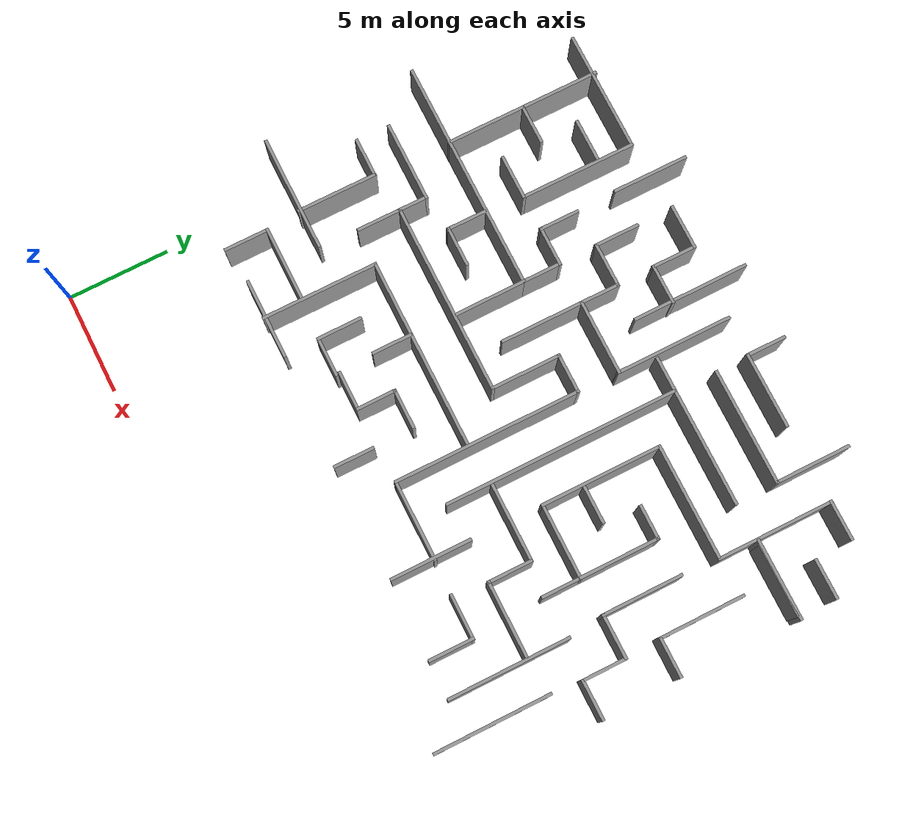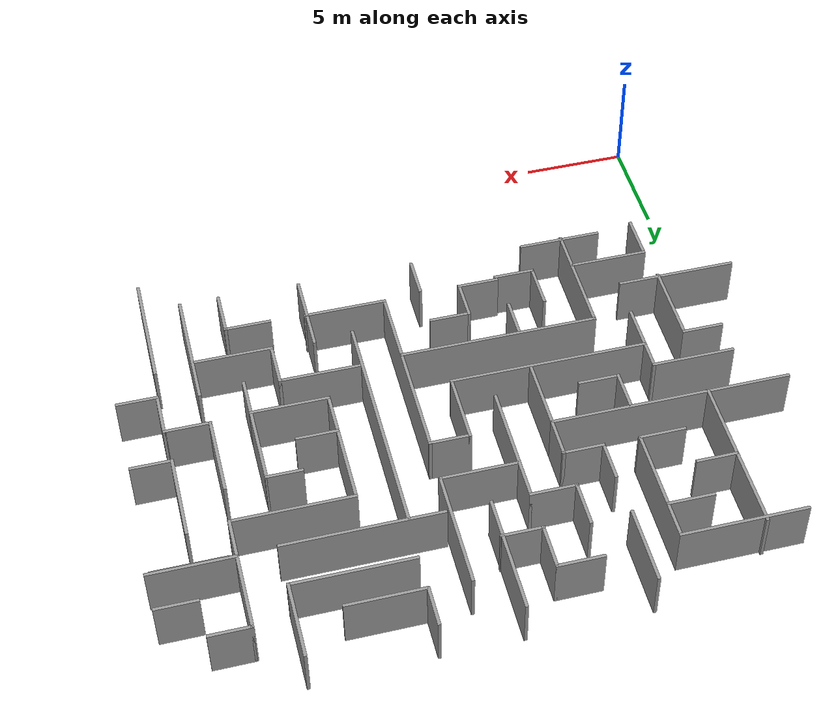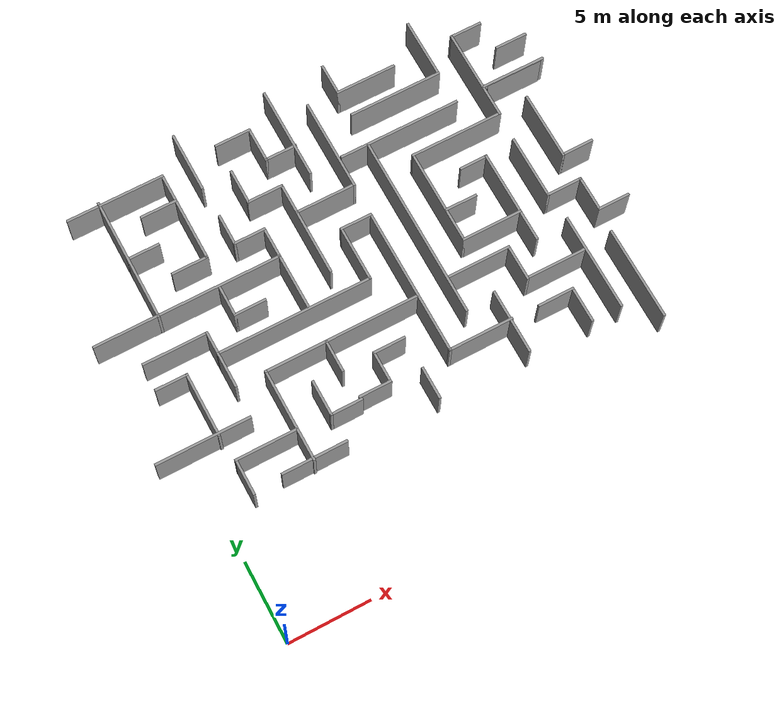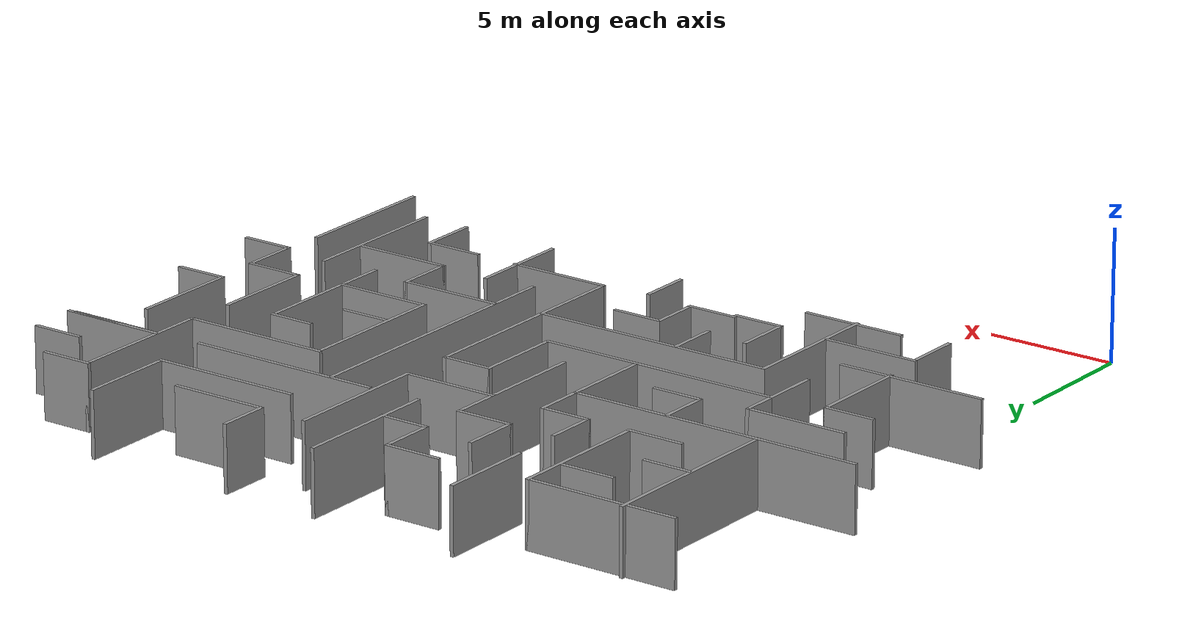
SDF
<sdf version="1.7">
 <model name="maze4">
  <pose>-0.019787 0.082438 0 0 -0 0</pose>
  <link name="Wall_450">
   <collision name="Wall_450_Collision">
    <geometry><box><size>6 0.15 2.5</size></box></geometry>
    <pose>0 0 1.25 0 -0 0</pose>
   </collision>
   <visual name="Wall_450_Visual">
    <pose>0 0 1.25 0 -0 0</pose>
    <geometry><box><size>6 0.15 2.5</size></box></geometry>
    <material>
     <script><uri>file://media/materials/scripts/gazebo.material</uri><name>Gazebo/Grey</name></script>
     <ambient>1 1 1 1</ambient>
    </material>
    <meta><layer>0</layer></meta>
   </visual>
   <pose>24.5619 10.3295 0 0 -0 1.5708</pose>
  </link>
  <link name="Wall_452">
   <collision name="Wall_452_Collision">
    <geometry><box><size>2.25 0.15 2.5</size></box></geometry>
    <pose>0 0 1.25 0 -0 0</pose>
   </collision>
   <visual name="Wall_452_Visual">
    <pose>0 0 1.25 0 -0 0</pose>
    <geometry><box><size>2.25 0.15 2.5</size></box></geometry>
    <material>
     <script><uri>file://media/materials/scripts/gazebo.material</uri><name>Gazebo/Grey</name></script>
     <ambient>1 1 1 1</ambient>
    </material>
    <meta><layer>0</layer></meta>
   </visual>
   <pose>22.7119 8.45448 0 0 -0 1.5708</pose>
  </link>
  <link name="Wall_453">
   <collision name="Wall_453_Collision">
    <geometry><box><size>2.25 0.15 2.5</size></box></geometry>
    <pose>0 0 1.25 0 -0 0</pose>
   </collision>
   <visual name="Wall_453_Visual">
    <pose>0 0 1.25 0 -0 0</pose>
    <geometry><box><size>2.25 0.15 2.5</size></box></geometry>
    <material>
     <script><uri>file://media/materials/scripts/gazebo.material</uri><name>Gazebo/Grey</name></script>
     <ambient>1 1 1 1</ambient>
    </material>
    <meta><layer>0</layer></meta>
   </visual>
   <pose>21.6619 9.50448 0 0 -0 3.14159</pose>
  </link>
  <link name="Wall_479">
   <collision name="Wall_479_Collision">
    <geometry><box><size>3.75 0.15 2.5</size></box></geometry>
    <pose>0 0 1.25 0 -0 0</pose>
   </collision>
   <visual name="Wall_479_Visual">
    <pose>0 0 1.25 0 -0 0</pose>
    <geometry><box><size>3.75 0.15 2.5</size></box></geometry>
    <material>
     <script><uri>file://media/materials/scripts/gazebo.material</uri><name>Gazebo/Grey</name></script>
     <ambient>1 1 1 1</ambient>
    </material>
    <meta><layer>0</layer></meta>
   </visual>
   <pose>22.6438 26.4366 0 0 -0 -1.5708</pose>
  </link>
  <link name="Wall_480">
   <collision name="Wall_480_Collision">
    <geometry><box><size>5.75 0.15 2.5</size></box></geometry>
    <pose>0 0 1.25 0 -0 0</pose>
   </collision>
   <visual name="Wall_480_Visual">
    <pose>0 0 1.25 0 -0 0</pose>
    <geometry><box><size>5.75 0.15 2.5</size></box></geometry>
    <material>
     <script><uri>file://media/materials/scripts/gazebo.material</uri><name>Gazebo/Grey</name></script>
     <ambient>1 1 1 1</ambient>
    </material>
    <meta><layer>0</layer></meta>
   </visual>
   <pose>19.8438 24.6366 0 0 -0 3.14159</pose>
  </link>
  <link name="Wall_482">
   <collision name="Wall_482_Collision">
    <geometry><box><size>2 0.15 2.5</size></box></geometry>
    <pose>0 0 1.25 0 -0 0</pose>
   </collision>
   <visual name="Wall_482_Visual">
    <pose>0 0 1.25 0 -0 0</pose>
    <geometry><box><size>2 0.15 2.5</size></box></geometry>
    <material>
     <script><uri>file://media/materials/scripts/gazebo.material</uri><name>Gazebo/Grey</name></script>
     <ambient>1 1 1 1</ambient>
    </material>
    <meta><layer>0</layer></meta>
   </visual>
   <pose>16.9885 27.1895 0 0 -0 -1.5708</pose>
  </link>
  <link name="Wall_483">
   <collision name="Wall_483_Collision">
    <geometry><box><size>3.75 0.15 2.5</size></box></geometry>
    <pose>0 0 1.25 0 -0 0</pose>
   </collision>
   <visual name="Wall_483_Visual">
    <pose>0 0 1.25 0 -0 0</pose>
    <geometry><box><size>3.75 0.15 2.5</size></box></geometry>
    <material>
     <script><uri>file://media/materials/scripts/gazebo.material</uri><name>Gazebo/Grey</name></script>
     <ambient>1 1 1 1</ambient>
    </material>
    <meta><layer>0</layer></meta>
   </visual>
   <pose>18.7885 26.2645 0 0 -0 0</pose>
  </link>
  <link name="Wall_485">
   <collision name="Wall_485_Collision">
    <geometry><box><size>5.75 0.15 2.5</size></box></geometry>
    <pose>0 0 1.25 0 -0 0</pose>
   </collision>
   <visual name="Wall_485_Visual">
    <pose>0 0 1.25 0 -0 0</pose>
    <geometry><box><size>5.75 0.15 2.5</size></box></geometry>
    <material>
     <script><uri>file://media/materials/scripts/gazebo.material</uri><name>Gazebo/Grey</name></script>
     <ambient>1 1 1 1</ambient>
    </material>
    <meta><layer>0</layer></meta>
   </visual>
   <pose>13.2455 25.3552 0 0 -0 -1.5708</pose>
  </link>
  <link name="Wall_487">
   <collision name="Wall_487_Collision">
    <geometry><box><size>2.25 0.15 2.5</size></box></geometry>
    <pose>0 0 1.25 0 -0 0</pose>
   </collision>
   <visual name="Wall_487_Visual">
    <pose>0 0 1.25 0 -0 0</pose>
    <geometry><box><size>2.25 0.15 2.5</size></box></geometry>
    <material>
     <script><uri>file://media/materials/scripts/gazebo.material</uri><name>Gazebo/Grey</name></script>
     <ambient>1 1 1 1</ambient>
    </material>
    <meta><layer>0</layer></meta>
   </visual>
   <pose>10.3897 26.5278 0 0 -0 0</pose>
  </link>
  <link name="Wall_488">
   <collision name="Wall_488_Collision">
    <geometry><box><size>2.25 0.15 2.5</size></box></geometry>
    <pose>0 0 1.25 0 -0 0</pose>
   </collision>
   <visual name="Wall_488_Visual">
    <pose>0 0 1.25 0 -0 0</pose>
    <geometry><box><size>2.25 0.15 2.5</size></box></geometry>
    <material>
     <script><uri>file://media/materials/scripts/gazebo.material</uri><name>Gazebo/Grey</name></script>
     <ambient>1 1 1 1</ambient>
    </material>
    <meta><layer>0</layer></meta>
   </visual>
   <pose>11.4397 25.4778 0 0 -0 -1.5708</pose>
  </link>
  <link name="Wall_489">
   <collision name="Wall_489_Collision">
    <geometry><box><size>2 0.15 2.5</size></box></geometry>
    <pose>0 0 1.25 0 -0 0</pose>
   </collision>
   <visual name="Wall_489_Visual">
    <pose>0 0 1.25 0 -0 0</pose>
    <geometry><box><size>2 0.15 2.5</size></box></geometry>
    <material>
     <script><uri>file://media/materials/scripts/gazebo.material</uri><name>Gazebo/Grey</name></script>
     <ambient>1 1 1 1</ambient>
    </material>
    <meta><layer>0</layer></meta>
   </visual>
   <pose>12.3647 24.4278 0 0 -0 0</pose>
  </link>
  <link name="Wall_491">
   <collision name="Wall_491_Collision">
    <geometry><box><size>3.75 0.15 2.5</size></box></geometry>
    <pose>0 0 1.25 0 -0 0</pose>
   </collision>
   <visual name="Wall_491_Visual">
    <pose>0 0 1.25 0 -0 0</pose>
    <geometry><box><size>3.75 0.15 2.5</size></box></geometry>
    <material>
     <script><uri>file://media/materials/scripts/gazebo.material</uri><name>Gazebo/Grey</name></script>
     <ambient>1 1 1 1</ambient>
    </material>
    <meta><layer>0</layer></meta>
   </visual>
   <pose>7.46817 26.3749 0 0 -0 1.5708</pose>
  </link>
  <link name="Wall_502">
   <collision name="Wall_502_Collision">
    <geometry><box><size>6 0.15 2.5</size></box></geometry>
    <pose>0 0 1.25 0 -0 0</pose>
   </collision>
   <visual name="Wall_502_Visual">
    <pose>0 0 1.25 0 -0 0</pose>
    <geometry><box><size>6 0.15 2.5</size></box></geometry>
    <material>
     <script><uri>file://media/materials/scripts/gazebo.material</uri><name>Gazebo/Grey</name></script>
     <ambient>1 1 1 1</ambient>
    </material>
    <meta><layer>0</layer></meta>
   </visual>
   <pose>2.90081 26.2748 0 0 -0 0</pose>
  </link>
  <link name="Wall_503">
   <collision name="Wall_503_Collision">
    <geometry><box><size>5.75 0.15 2.5</size></box></geometry>
    <pose>0 0 1.25 0 -0 0</pose>
   </collision>
   <visual name="Wall_503_Visual">
    <pose>0 0 1.25 0 -0 0</pose>
    <geometry><box><size>5.75 0.15 2.5</size></box></geometry>
    <material>
     <script><uri>file://media/materials/scripts/gazebo.material</uri><name>Gazebo/Grey</name></script>
     <ambient>1 1 1 1</ambient>
    </material>
    <meta><layer>0</layer></meta>
   </visual>
   <pose>5.82581 23.4748 0 0 -0 -1.5708</pose>
  </link>
  <link name="Wall_504">
   <collision name="Wall_504_Collision">
    <geometry><box><size>2.25 0.15 2.5</size></box></geometry>
    <pose>0 0 1.25 0 -0 0</pose>
   </collision>
   <visual name="Wall_504_Visual">
    <pose>0 0 1.25 0 -0 0</pose>
    <geometry><box><size>2.25 0.15 2.5</size></box></geometry>
    <material>
     <script><uri>file://media/materials/scripts/gazebo.material</uri><name>Gazebo/Grey</name></script>
     <ambient>1 1 1 1</ambient>
    </material>
    <meta><layer>0</layer></meta>
   </visual>
   <pose>4.77581 20.6748 0 0 -0 3.14159</pose>
  </link>
  <link name="Wall_506">
   <collision name="Wall_506_Collision">
    <geometry><box><size>2.25 0.15 2.5</size></box></geometry>
    <pose>0 0 1.25 0 -0 0</pose>
   </collision>
   <visual name="Wall_506_Visual">
    <pose>0 0 1.25 0 -0 0</pose>
    <geometry><box><size>2.25 0.15 2.5</size></box></geometry>
    <material>
     <script><uri>file://media/materials/scripts/gazebo.material</uri><name>Gazebo/Grey</name></script>
     <ambient>1 1 1 1</ambient>
    </material>
    <meta><layer>0</layer></meta>
   </visual>
   <pose>4.75782 24.5472 0 0 -0 0</pose>
  </link>
  <link name="Wall_510">
   <collision name="Wall_510_Collision">
    <geometry><box><size>7.75 0.15 2.5</size></box></geometry>
    <pose>0 0 1.25 0 -0 0</pose>
   </collision>
   <visual name="Wall_510_Visual">
    <pose>0 0 1.25 0 -0 0</pose>
    <geometry><box><size>7.75 0.15 2.5</size></box></geometry>
    <material>
     <script><uri>file://media/materials/scripts/gazebo.material</uri><name>Gazebo/Grey</name></script>
     <ambient>1 1 1 1</ambient>
    </material>
    <meta><layer>0</layer></meta>
   </visual>
   <pose>1.93359 22.6132 0 0 -0 -1.5708</pose>
  </link>
  <link name="Wall_512">
   <collision name="Wall_512_Collision">
    <geometry><box><size>2 0.15 2.5</size></box></geometry>
    <pose>0 0 1.25 0 -0 0</pose>
   </collision>
   <visual name="Wall_512_Visual">
    <pose>0 0 1.25 0 -0 0</pose>
    <geometry><box><size>2 0.15 2.5</size></box></geometry>
    <material>
     <script><uri>file://media/materials/scripts/gazebo.material</uri><name>Gazebo/Grey</name></script>
     <ambient>1 1 1 1</ambient>
    </material>
    <meta><layer>0</layer></meta>
   </visual>
   <pose>2.85859 22.62 0 0 -0 0</pose>
  </link>
  <link name="Wall_529">
   <collision name="Wall_529_Collision">
    <geometry><box><size>11.5 0.15 2.5</size></box></geometry>
    <pose>0 0 1.25 0 -0 0</pose>
   </collision>
   <visual name="Wall_529_Visual">
    <pose>0 0 1.25 0 -0 0</pose>
    <geometry><box><size>11.5 0.15 2.5</size></box></geometry>
    <material>
     <script><uri>file://media/materials/scripts/gazebo.material</uri><name>Gazebo/Grey</name></script>
     <ambient>1 1 1 1</ambient>
    </material>
    <meta><layer>0</layer></meta>
   </visual>
   <pose>3.72363 18.8268 0 0 -0 0</pose>
  </link>
  <link name="Wall_530">
   <collision name="Wall_530_Collision">
    <geometry><box><size>2 0.15 2.5</size></box></geometry>
    <pose>0 0 1.25 0 -0 0</pose>
   </collision>
   <visual name="Wall_530_Visual">
    <pose>0 0 1.25 0 -0 0</pose>
    <geometry><box><size>2 0.15 2.5</size></box></geometry>
    <material>
     <script><uri>file://media/materials/scripts/gazebo.material</uri><name>Gazebo/Grey</name></script>
     <ambient>1 1 1 1</ambient>
    </material>
    <meta><layer>0</layer></meta>
   </visual>
   <pose>9.39863 19.7518 0 0 -0 1.5708</pose>
  </link>
  <link name="Wall_531">
   <collision name="Wall_531_Collision">
    <geometry><box><size>2 0.15 2.5</size></box></geometry>
    <pose>0 0 1.25 0 -0 0</pose>
   </collision>
   <visual name="Wall_531_Visual">
    <pose>0 0 1.25 0 -0 0</pose>
    <geometry><box><size>2 0.15 2.5</size></box></geometry>
    <material>
     <script><uri>file://media/materials/scripts/gazebo.material</uri><name>Gazebo/Grey</name></script>
     <ambient>1 1 1 1</ambient>
    </material>
    <meta><layer>0</layer></meta>
   </visual>
   <pose>8.47363 20.6768 0 0 -0 3.14159</pose>
  </link>
  <link name="Wall_532">
   <collision name="Wall_532_Collision">
    <geometry><box><size>2 0.15 2.5</size></box></geometry>
    <pose>0 0 1.25 0 -0 0</pose>
   </collision>
   <visual name="Wall_532_Visual">
    <pose>0 0 1.25 0 -0 0</pose>
    <geometry><box><size>2 0.15 2.5</size></box></geometry>
    <material>
     <script><uri>file://media/materials/scripts/gazebo.material</uri><name>Gazebo/Grey</name></script>
     <ambient>1 1 1 1</ambient>
    </material>
    <meta><layer>0</layer></meta>
   </visual>
   <pose>7.54863 21.6018 0 0 -0 1.5708</pose>
  </link>
  <link name="Wall_534">
   <collision name="Wall_534_Collision">
    <geometry><box><size>2.25 0.15 2.5</size></box></geometry>
    <pose>0 0 1.25 0 -0 0</pose>
   </collision>
   <visual name="Wall_534_Visual">
    <pose>0 0 1.25 0 -0 0</pose>
    <geometry><box><size>2.25 0.15 2.5</size></box></geometry>
    <material>
     <script><uri>file://media/materials/scripts/gazebo.material</uri><name>Gazebo/Grey</name></script>
     <ambient>1 1 1 1</ambient>
    </material>
    <meta><layer>0</layer></meta>
   </visual>
   <pose>9.36701 23.6195 0 0 -0 -1.5708</pose>
  </link>
  <link name="Wall_535">
   <collision name="Wall_535_Collision">
    <geometry><box><size>2.25 0.15 2.5</size></box></geometry>
    <pose>0 0 1.25 0 -0 0</pose>
   </collision>
   <visual name="Wall_535_Visual">
    <pose>0 0 1.25 0 -0 0</pose>
    <geometry><box><size>2.25 0.15 2.5</size></box></geometry>
    <material>
     <script><uri>file://media/materials/scripts/gazebo.material</uri><name>Gazebo/Grey</name></script>
     <ambient>1 1 1 1</ambient>
    </material>
    <meta><layer>0</layer></meta>
   </visual>
   <pose>10.417 22.5695 0 0 -0 0</pose>
  </link>
  <link name="Wall_536">
   <collision name="Wall_536_Collision">
    <geometry><box><size>6 0.15 2.5</size></box></geometry>
    <pose>0 0 1.25 0 -0 0</pose>
   </collision>
   <visual name="Wall_536_Visual">
    <pose>0 0 1.25 0 -0 0</pose>
    <geometry><box><size>6 0.15 2.5</size></box></geometry>
    <material>
     <script><uri>file://media/materials/scripts/gazebo.material</uri><name>Gazebo/Grey</name></script>
     <ambient>1 1 1 1</ambient>
    </material>
    <meta><layer>0</layer></meta>
   </visual>
   <pose>11.467 19.6445 0 0 -0 -1.5708</pose>
  </link>
  <link name="Wall_538">
   <collision name="Wall_538_Collision">
    <geometry><box><size>3.75 0.15 2.5</size></box></geometry>
    <pose>0 0 1.25 0 -0 0</pose>
   </collision>
   <visual name="Wall_538_Visual">
    <pose>0 0 1.25 0 -0 0</pose>
    <geometry><box><size>3.75 0.15 2.5</size></box></geometry>
    <material>
     <script><uri>file://media/materials/scripts/gazebo.material</uri><name>Gazebo/Grey</name></script>
     <ambient>1 1 1 1</ambient>
    </material>
    <meta><layer>0</layer></meta>
   </visual>
   <pose>13.2777 20.7234 0 0 -0 0</pose>
  </link>
  <link name="Wall_539">
   <collision name="Wall_539_Collision">
    <geometry><box><size>5.75 0.15 2.5</size></box></geometry>
    <pose>0 0 1.25 0 -0 0</pose>
   </collision>
   <visual name="Wall_539_Visual">
    <pose>0 0 1.25 0 -0 0</pose>
    <geometry><box><size>5.75 0.15 2.5</size></box></geometry>
    <material>
     <script><uri>file://media/materials/scripts/gazebo.material</uri><name>Gazebo/Grey</name></script>
     <ambient>1 1 1 1</ambient>
    </material>
    <meta><layer>0</layer></meta>
   </visual>
   <pose>15.0777 23.5234 0 0 -0 1.5708</pose>
  </link>
  <link name="Wall_541">
   <collision name="Wall_541_Collision">
    <geometry><box><size>7.5 0.15 2.5</size></box></geometry>
    <pose>0 0 1.25 0 -0 0</pose>
   </collision>
   <visual name="Wall_541_Visual">
    <pose>0 0 1.25 0 -0 0</pose>
    <geometry><box><size>7.5 0.15 2.5</size></box></geometry>
    <material>
     <script><uri>file://media/materials/scripts/gazebo.material</uri><name>Gazebo/Grey</name></script>
     <ambient>1 1 1 1</ambient>
    </material>
    <meta><layer>0</layer></meta>
   </visual>
   <pose>18.9765 22.5588 0 0 -0 0</pose>
  </link>
  <link name="Wall_543">
   <collision name="Wall_543_Collision">
    <geometry><box><size>2 0.15 2.5</size></box></geometry>
    <pose>0 0 1.25 0 -0 0</pose>
   </collision>
   <visual name="Wall_543_Visual">
    <pose>0 0 1.25 0 -0 0</pose>
    <geometry><box><size>2 0.15 2.5</size></box></geometry>
    <material>
     <script><uri>file://media/materials/scripts/gazebo.material</uri><name>Gazebo/Grey</name></script>
     <ambient>1 1 1 1</ambient>
    </material>
    <meta><layer>0</layer></meta>
   </visual>
   <pose>27.3632 24.4909 0 0 -0 0</pose>
  </link>
  <link name="Wall_545">
   <collision name="Wall_545_Collision">
    <geometry><box><size>2 0.15 2.5</size></box></geometry>
    <pose>0 0 1.25 0 -0 0</pose>
   </collision>
   <visual name="Wall_545_Visual">
    <pose>0 0 1.25 0 -0 0</pose>
    <geometry><box><size>2 0.15 2.5</size></box></geometry>
    <material>
     <script><uri>file://media/materials/scripts/gazebo.material</uri><name>Gazebo/Grey</name></script>
     <ambient>1 1 1 1</ambient>
    </material>
    <meta><layer>0</layer></meta>
   </visual>
   <pose>25.4017 26.3487 0 0 -0 3.14159</pose>
  </link>
  <link name="Wall_546">
   <collision name="Wall_546_Collision">
    <geometry><box><size>5.75 0.15 2.5</size></box></geometry>
    <pose>0 0 1.25 0 -0 0</pose>
   </collision>
   <visual name="Wall_546_Visual">
    <pose>0 0 1.25 0 -0 0</pose>
    <geometry><box><size>5.75 0.15 2.5</size></box></geometry>
    <material>
     <script><uri>file://media/materials/scripts/gazebo.material</uri><name>Gazebo/Grey</name></script>
     <ambient>1 1 1 1</ambient>
    </material>
    <meta><layer>0</layer></meta>
   </visual>
   <pose>24.4767 23.5487 0 0 -0 -1.5708</pose>
  </link>
  <link name="Wall_547">
   <collision name="Wall_547_Collision">
    <geometry><box><size>5.75 0.15 2.5</size></box></geometry>
    <pose>0 0 1.25 0 -0 0</pose>
   </collision>
   <visual name="Wall_547_Visual">
    <pose>0 0 1.25 0 -0 0</pose>
    <geometry><box><size>5.75 0.15 2.5</size></box></geometry>
    <material>
     <script><uri>file://media/materials/scripts/gazebo.material</uri><name>Gazebo/Grey</name></script>
     <ambient>1 1 1 1</ambient>
    </material>
    <meta><layer>0</layer></meta>
   </visual>
   <pose>21.6767 20.7487 0 0 -0 3.14159</pose>
  </link>
  <link name="Wall_548">
   <collision name="Wall_548_Collision">
    <geometry><box><size>6 0.15 2.5</size></box></geometry>
    <pose>0 0 1.25 0 -0 0</pose>
   </collision>
   <visual name="Wall_548_Visual">
    <pose>0 0 1.25 0 -0 0</pose>
    <geometry><box><size>6 0.15 2.5</size></box></geometry>
    <material>
     <script><uri>file://media/materials/scripts/gazebo.material</uri><name>Gazebo/Grey</name></script>
     <ambient>1 1 1 1</ambient>
    </material>
    <meta><layer>0</layer></meta>
   </visual>
   <pose>18.8767 17.8237 0 0 -0 -1.5708</pose>
  </link>
  <link name="Wall_549">
   <collision name="Wall_549_Collision">
    <geometry><box><size>3.75 0.15 2.5</size></box></geometry>
    <pose>0 0 1.25 0 -0 0</pose>
   </collision>
   <visual name="Wall_549_Visual">
    <pose>0 0 1.25 0 -0 0</pose>
    <geometry><box><size>3.75 0.15 2.5</size></box></geometry>
    <material>
     <script><uri>file://media/materials/scripts/gazebo.material</uri><name>Gazebo/Grey</name></script>
     <ambient>1 1 1 1</ambient>
    </material>
    <meta><layer>0</layer></meta>
   </visual>
   <pose>20.6767 14.8987 0 0 -0 0</pose>
  </link>
  <link name="Wall_550">
   <collision name="Wall_550_Collision">
    <geometry><box><size>4 0.15 2.5</size></box></geometry>
    <pose>0 0 1.25 0 -0 0</pose>
   </collision>
   <visual name="Wall_550_Visual">
    <pose>0 0 1.25 0 -0 0</pose>
    <geometry><box><size>4 0.15 2.5</size></box></geometry>
    <material>
     <script><uri>file://media/materials/scripts/gazebo.material</uri><name>Gazebo/Grey</name></script>
     <ambient>1 1 1 1</ambient>
    </material>
    <meta><layer>0</layer></meta>
   </visual>
   <pose>22.4767 16.8237 0 0 -0 1.5708</pose>
  </link>
  <link name="Wall_551">
   <collision name="Wall_551_Collision">
    <geometry><box><size>1.75 0.15 2.5</size></box></geometry>
    <pose>0 0 1.25 0 -0 0</pose>
   </collision>
   <visual name="Wall_551_Visual">
    <pose>0 0 1.25 0 -0 0</pose>
    <geometry><box><size>1.75 0.15 2.5</size></box></geometry>
    <material>
     <script><uri>file://media/materials/scripts/gazebo.material</uri><name>Gazebo/Grey</name></script>
     <ambient>1 1 1 1</ambient>
    </material>
    <meta><layer>0</layer></meta>
   </visual>
   <pose>21.6767 18.7487 0 0 -0 3.14159</pose>
  </link>
  <link name="Wall_553">
   <collision name="Wall_553_Collision">
    <geometry><box><size>2 0.15 2.5</size></box></geometry>
    <pose>0 0 1.25 0 -0 0</pose>
   </collision>
   <visual name="Wall_553_Visual">
    <pose>0 0 1.25 0 -0 0</pose>
    <geometry><box><size>2 0.15 2.5</size></box></geometry>
    <material>
     <script><uri>file://media/materials/scripts/gazebo.material</uri><name>Gazebo/Grey</name></script>
     <ambient>1 1 1 1</ambient>
    </material>
    <meta><layer>0</layer></meta>
   </visual>
   <pose>19.829 16.9208 0 0 -0 0</pose>
  </link>
  <link name="Wall_557">
   <collision name="Wall_557_Collision">
    <geometry><box><size>2 0.15 2.5</size></box></geometry>
    <pose>0 0 1.25 0 -0 0</pose>
   </collision>
   <visual name="Wall_557_Visual">
    <pose>0 0 1.25 0 -0 0</pose>
    <geometry><box><size>2 0.15 2.5</size></box></geometry>
    <material>
     <script><uri>file://media/materials/scripts/gazebo.material</uri><name>Gazebo/Grey</name></script>
     <ambient>1 1 1 1</ambient>
    </material>
    <meta><layer>0</layer></meta>
   </visual>
   <pose>22.4767 13.9737 0 0 -0 -1.5708</pose>
  </link>
  <link name="Wall_559">
   <collision name="Wall_559_Collision">
    <geometry><box><size>4.25 0.15 2.5</size></box></geometry>
    <pose>0 0 1.25 0 -0 0</pose>
   </collision>
   <visual name="Wall_559_Visual">
    <pose>0 0 1.25 0 -0 0</pose>
    <geometry><box><size>4.25 0.15 2.5</size></box></geometry>
    <material>
     <script><uri>file://media/materials/scripts/gazebo.material</uri><name>Gazebo/Grey</name></script>
     <ambient>1 1 1 1</ambient>
    </material>
    <meta><layer>0</layer></meta>
   </visual>
   <pose>26.3619 18.846 0 0 -0 -1.5708</pose>
  </link>
  <link name="Wall_560">
   <collision name="Wall_560_Collision">
    <geometry><box><size>2 0.15 2.5</size></box></geometry>
    <pose>0 0 1.25 0 -0 0</pose>
   </collision>
   <visual name="Wall_560_Visual">
    <pose>0 0 1.25 0 -0 0</pose>
    <geometry><box><size>2 0.15 2.5</size></box></geometry>
    <material>
     <script><uri>file://media/materials/scripts/gazebo.material</uri><name>Gazebo/Grey</name></script>
     <ambient>1 1 1 1</ambient>
    </material>
    <meta><layer>0</layer></meta>
   </visual>
   <pose>27.2869 16.796 0 0 -0 0</pose>
  </link>
  <link name="Wall_562">
   <collision name="Wall_562_Collision">
    <geometry><box><size>4 0.15 2.5</size></box></geometry>
    <pose>0 0 1.25 0 -0 0</pose>
   </collision>
   <visual name="Wall_562_Visual">
    <pose>0 0 1.25 0 -0 0</pose>
    <geometry><box><size>4 0.15 2.5</size></box></geometry>
    <material>
     <script><uri>file://media/materials/scripts/gazebo.material</uri><name>Gazebo/Grey</name></script>
     <ambient>1 1 1 1</ambient>
    </material>
    <meta><layer>0</layer></meta>
   </visual>
   <pose>24.3567 16.9658 0 0 -0 -1.5708</pose>
  </link>
  <link name="Wall_563">
   <collision name="Wall_563_Collision">
    <geometry><box><size>2.25 0.15 2.5</size></box></geometry>
    <pose>0 0 1.25 0 -0 0</pose>
   </collision>
   <visual name="Wall_563_Visual">
    <pose>0 0 1.25 0 -0 0</pose>
    <geometry><box><size>2.25 0.15 2.5</size></box></geometry>
    <material>
     <script><uri>file://media/materials/scripts/gazebo.material</uri><name>Gazebo/Grey</name></script>
     <ambient>1 1 1 1</ambient>
    </material>
    <meta><layer>0</layer></meta>
   </visual>
   <pose>25.4067 15.0408 0 0 -0 0</pose>
  </link>
  <link name="Wall_564">
   <collision name="Wall_564_Collision">
    <geometry><box><size>2.25 0.15 2.5</size></box></geometry>
    <pose>0 0 1.25 0 -0 0</pose>
   </collision>
   <visual name="Wall_564_Visual">
    <pose>0 0 1.25 0 -0 0</pose>
    <geometry><box><size>2.25 0.15 2.5</size></box></geometry>
    <material>
     <script><uri>file://media/materials/scripts/gazebo.material</uri><name>Gazebo/Grey</name></script>
     <ambient>1 1 1 1</ambient>
    </material>
    <meta><layer>0</layer></meta>
   </visual>
   <pose>26.4567 13.9908 0 0 -0 -1.5708</pose>
  </link>
  <link name="Wall_565">
   <collision name="Wall_565_Collision">
    <geometry><box><size>2 0.15 2.5</size></box></geometry>
    <pose>0 0 1.25 0 -0 0</pose>
   </collision>
   <visual name="Wall_565_Visual">
    <pose>0 0 1.25 0 -0 0</pose>
    <geometry><box><size>2 0.15 2.5</size></box></geometry>
    <material>
     <script><uri>file://media/materials/scripts/gazebo.material</uri><name>Gazebo/Grey</name></script>
     <ambient>1 1 1 1</ambient>
    </material>
    <meta><layer>0</layer></meta>
   </visual>
   <pose>27.3817 12.9408 0 0 -0 0</pose>
  </link>
  <link name="Wall_567">
   <collision name="Wall_567_Collision">
    <geometry><box><size>3.5 0.15 2.5</size></box></geometry>
    <pose>0 0 1.25 0 -0 0</pose>
   </collision>
   <visual name="Wall_567_Visual">
    <pose>0 0 1.25 0 -0 0</pose>
    <geometry><box><size>3.5 0.15 2.5</size></box></geometry>
    <material>
     <script><uri>file://media/materials/scripts/gazebo.material</uri><name>Gazebo/Grey</name></script>
     <ambient>1 1 1 1</ambient>
    </material>
    <meta><layer>0</layer></meta>
   </visual>
   <pose>26.489 22.6198 0 0 -0 0</pose>
  </link>
  <link name="Wall_569">
   <collision name="Wall_569_Collision">
    <geometry><box><size>4 0.15 2.5</size></box></geometry>
    <pose>0 0 1.25 0 -0 0</pose>
   </collision>
   <visual name="Wall_569_Visual">
    <pose>0 0 1.25 0 -0 0</pose>
    <geometry><box><size>4 0.15 2.5</size></box></geometry>
    <material>
     <script><uri>file://media/materials/scripts/gazebo.material</uri><name>Gazebo/Grey</name></script>
     <ambient>1 1 1 1</ambient>
    </material>
    <meta><layer>0</layer></meta>
   </visual>
   <pose>26.4576 22.655 0 0 -0 0</pose>
  </link>
  <link name="Wall_571">
   <collision name="Wall_571_Collision">
    <geometry><box><size>5.75 0.15 2.5</size></box></geometry>
    <pose>0 0 1.25 0 -0 0</pose>
   </collision>
   <visual name="Wall_571_Visual">
    <pose>0 0 1.25 0 -0 0</pose>
    <geometry><box><size>5.75 0.15 2.5</size></box></geometry>
    <material>
     <script><uri>file://media/materials/scripts/gazebo.material</uri><name>Gazebo/Grey</name></script>
     <ambient>1 1 1 1</ambient>
    </material>
    <meta><layer>0</layer></meta>
   </visual>
   <pose>26.3353 8.62275 0 0 -0 -1.5708</pose>
  </link>
  <link name="Wall_587">
   <collision name="Wall_587_Collision">
    <geometry><box><size>11.5 0.15 2.5</size></box></geometry>
    <pose>0 0 1.25 0 -0 0</pose>
   </collision>
   <visual name="Wall_587_Visual">
    <pose>0 0 1.25 0 -0 0</pose>
    <geometry><box><size>11.5 0.15 2.5</size></box></geometry>
    <material>
     <script><uri>file://media/materials/scripts/gazebo.material</uri><name>Gazebo/Grey</name></script>
     <ambient>1 1 1 1</ambient>
    </material>
    <meta><layer>0</layer></meta>
   </visual>
   <pose>16.9496 16.8326 0 0 -0 -1.5708</pose>
  </link>
  <link name="Wall_589">
   <collision name="Wall_589_Collision">
    <geometry><box><size>4 0.15 2.5</size></box></geometry>
    <pose>0 0 1.25 0 -0 0</pose>
   </collision>
   <visual name="Wall_589_Visual">
    <pose>0 0 1.25 0 -0 0</pose>
    <geometry><box><size>4 0.15 2.5</size></box></geometry>
    <material>
     <script><uri>file://media/materials/scripts/gazebo.material</uri><name>Gazebo/Grey</name></script>
     <ambient>1 1 1 1</ambient>
    </material>
    <meta><layer>0</layer></meta>
   </visual>
   <pose>18.915 13.3242 0 0 -0 0</pose>
  </link>
  <link name="Wall_590">
   <collision name="Wall_590_Collision">
    <geometry><box><size>2.25 0.15 2.5</size></box></geometry>
    <pose>0 0 1.25 0 -0 0</pose>
   </collision>
   <visual name="Wall_590_Visual">
    <pose>0 0 1.25 0 -0 0</pose>
    <geometry><box><size>2.25 0.15 2.5</size></box></geometry>
    <material>
     <script><uri>file://media/materials/scripts/gazebo.material</uri><name>Gazebo/Grey</name></script>
     <ambient>1 1 1 1</ambient>
    </material>
    <meta><layer>0</layer></meta>
   </visual>
   <pose>20.84 12.2742 0 0 -0 -1.5708</pose>
  </link>
  <link name="Wall_591">
   <collision name="Wall_591_Collision">
    <geometry><box><size>3.75 0.15 2.5</size></box></geometry>
    <pose>0 0 1.25 0 -0 0</pose>
   </collision>
   <visual name="Wall_591_Visual">
    <pose>0 0 1.25 0 -0 0</pose>
    <geometry><box><size>3.75 0.15 2.5</size></box></geometry>
    <material>
     <script><uri>file://media/materials/scripts/gazebo.material</uri><name>Gazebo/Grey</name></script>
     <ambient>1 1 1 1</ambient>
    </material>
    <meta><layer>0</layer></meta>
   </visual>
   <pose>22.64 11.2242 0 0 -0 0</pose>
  </link>
  <link name="Wall_595">
   <collision name="Wall_595_Collision">
    <geometry><box><size>4 0.15 2.5</size></box></geometry>
    <pose>0 0 1.25 0 -0 0</pose>
   </collision>
   <visual name="Wall_595_Visual">
    <pose>0 0 1.25 0 -0 0</pose>
    <geometry><box><size>4 0.15 2.5</size></box></geometry>
    <material>
     <script><uri>file://media/materials/scripts/gazebo.material</uri><name>Gazebo/Grey</name></script>
     <ambient>1 1 1 1</ambient>
    </material>
    <meta><layer>0</layer></meta>
   </visual>
   <pose>18.8105 9.41684 0 0 -0 -1.5708</pose>
  </link>
  <link name="Wall_635">
   <collision name="Wall_635_Collision">
    <geometry><box><size>4 0.15 2.5</size></box></geometry>
    <pose>0 0 1.25 0 -0 0</pose>
   </collision>
   <visual name="Wall_635_Visual">
    <pose>0 0 1.25 0 -0 0</pose>
    <geometry><box><size>4 0.15 2.5</size></box></geometry>
    <material>
     <script><uri>file://media/materials/scripts/gazebo.material</uri><name>Gazebo/Grey</name></script>
     <ambient>1 1 1 1</ambient>
    </material>
    <meta><layer>0</layer></meta>
   </visual>
   <pose>5.7265 7.63706 0 0 -0 0</pose>
  </link>
  <link name="Wall_641">
   <collision name="Wall_641_Collision">
    <geometry><box><size>2 0.15 2.5</size></box></geometry>
    <pose>0 0 1.25 0 -0 0</pose>
   </collision>
   <visual name="Wall_641_Visual">
    <pose>0 0 1.25 0 -0 0</pose>
    <geometry><box><size>2 0.15 2.5</size></box></geometry>
    <material>
     <script><uri>file://media/materials/scripts/gazebo.material</uri><name>Gazebo/Grey</name></script>
     <ambient>1 1 1 1</ambient>
    </material>
    <meta><layer>0</layer></meta>
   </visual>
   <pose>8.54359 9.33681 0 0 -0 3.14159</pose>
  </link>
  <link name="Wall_642">
   <collision name="Wall_642_Collision">
    <geometry><box><size>2.25 0.15 2.5</size></box></geometry>
    <pose>0 0 1.25 0 -0 0</pose>
   </collision>
   <visual name="Wall_642_Visual">
    <pose>0 0 1.25 0 -0 0</pose>
    <geometry><box><size>2.25 0.15 2.5</size></box></geometry>
    <material>
     <script><uri>file://media/materials/scripts/gazebo.material</uri><name>Gazebo/Grey</name></script>
     <ambient>1 1 1 1</ambient>
    </material>
    <meta><layer>0</layer></meta>
   </visual>
   <pose>7.61859 10.3868 0 0 -0 1.5708</pose>
  </link>
  <link name="Wall_644">
   <collision name="Wall_644_Collision">
    <geometry><box><size>2 0.15 2.5</size></box></geometry>
    <pose>0 0 1.25 0 -0 0</pose>
   </collision>
   <visual name="Wall_644_Visual">
    <pose>0 0 1.25 0 -0 0</pose>
    <geometry><box><size>2 0.15 2.5</size></box></geometry>
    <material>
     <script><uri>file://media/materials/scripts/gazebo.material</uri><name>Gazebo/Grey</name></script>
     <ambient>1 1 1 1</ambient>
    </material>
    <meta><layer>0</layer></meta>
   </visual>
   <pose>10.3898 9.50469 0 0 -0 0</pose>
  </link>
  <link name="Wall_645">
   <collision name="Wall_645_Collision">
    <geometry><box><size>2 0.15 2.5</size></box></geometry>
    <pose>0 0 1.25 0 -0 0</pose>
   </collision>
   <visual name="Wall_645_Visual">
    <pose>0 0 1.25 0 -0 0</pose>
    <geometry><box><size>2 0.15 2.5</size></box></geometry>
    <material>
     <script><uri>file://media/materials/scripts/gazebo.material</uri><name>Gazebo/Grey</name></script>
     <ambient>1 1 1 1</ambient>
    </material>
    <meta><layer>0</layer></meta>
   </visual>
   <pose>11.3148 10.4297 0 0 -0 1.5708</pose>
  </link>
  <link name="Wall_646">
   <collision name="Wall_646_Collision">
    <geometry><box><size>2 0.15 2.5</size></box></geometry>
    <pose>0 0 1.25 0 -0 0</pose>
   </collision>
   <visual name="Wall_646_Visual">
    <pose>0 0 1.25 0 -0 0</pose>
    <geometry><box><size>2 0.15 2.5</size></box></geometry>
    <material>
     <script><uri>file://media/materials/scripts/gazebo.material</uri><name>Gazebo/Grey</name></script>
     <ambient>1 1 1 1</ambient>
    </material>
    <meta><layer>0</layer></meta>
   </visual>
   <pose>12.2398 11.3547 0 0 -0 0</pose>
  </link>
  <link name="Wall_648">
   <collision name="Wall_648_Collision">
    <geometry><box><size>9.5 0.15 2.5</size></box></geometry>
    <pose>0 0 1.25 0 -0 0</pose>
   </collision>
   <visual name="Wall_648_Visual">
    <pose>0 0 1.25 0 -0 0</pose>
    <geometry><box><size>9.5 0.15 2.5</size></box></geometry>
    <material>
     <script><uri>file://media/materials/scripts/gazebo.material</uri><name>Gazebo/Grey</name></script>
     <ambient>1 1 1 1</ambient>
    </material>
    <meta><layer>0</layer></meta>
   </visual>
   <pose>10.3167 13.1633 0 0 -0 3.14159</pose>
  </link>
  <link name="Wall_649">
   <collision name="Wall_649_Collision">
    <geometry><box><size>5.75 0.15 2.5</size></box></geometry>
    <pose>0 0 1.25 0 -0 0</pose>
   </collision>
   <visual name="Wall_649_Visual">
    <pose>0 0 1.25 0 -0 0</pose>
    <geometry><box><size>5.75 0.15 2.5</size></box></geometry>
    <material>
     <script><uri>file://media/materials/scripts/gazebo.material</uri><name>Gazebo/Grey</name></script>
     <ambient>1 1 1 1</ambient>
    </material>
    <meta><layer>0</layer></meta>
   </visual>
   <pose>5.64166 10.3633 0 0 -0 -1.5708</pose>
  </link>
  <link name="Wall_651">
   <collision name="Wall_651_Collision">
    <geometry><box><size>9.25 0.15 2.5</size></box></geometry>
    <pose>0 0 1.25 0 -0 0</pose>
   </collision>
   <visual name="Wall_651_Visual">
    <pose>0 0 1.25 0 -0 0</pose>
    <geometry><box><size>9.25 0.15 2.5</size></box></geometry>
    <material>
     <script><uri>file://media/materials/scripts/gazebo.material</uri><name>Gazebo/Grey</name></script>
     <ambient>1 1 1 1</ambient>
    </material>
    <meta><layer>0</layer></meta>
   </visual>
   <pose>15.0329 14.1112 0 0 -0 1.5708</pose>
  </link>
  <link name="Wall_652">
   <collision name="Wall_652_Collision">
    <geometry><box><size>2 0.15 2.5</size></box></geometry>
    <pose>0 0 1.25 0 -0 0</pose>
   </collision>
   <visual name="Wall_652_Visual">
    <pose>0 0 1.25 0 -0 0</pose>
    <geometry><box><size>2 0.15 2.5</size></box></geometry>
    <material>
     <script><uri>file://media/materials/scripts/gazebo.material</uri><name>Gazebo/Grey</name></script>
     <ambient>1 1 1 1</ambient>
    </material>
    <meta><layer>0</layer></meta>
   </visual>
   <pose>14.1079 18.6612 0 0 -0 3.14159</pose>
  </link>
  <link name="Wall_653">
   <collision name="Wall_653_Collision">
    <geometry><box><size>3.5 0.15 2.5</size></box></geometry>
    <pose>0 0 1.25 0 -0 0</pose>
   </collision>
   <visual name="Wall_653_Visual">
    <pose>0 0 1.25 0 -0 0</pose>
    <geometry><box><size>3.5 0.15 2.5</size></box></geometry>
    <material>
     <script><uri>file://media/materials/scripts/gazebo.material</uri><name>Gazebo/Grey</name></script>
     <ambient>1 1 1 1</ambient>
    </material>
    <meta><layer>0</layer></meta>
   </visual>
   <pose>13.1829 16.9862 0 0 -0 -1.5708</pose>
  </link>
  <link name="Wall_654">
   <collision name="Wall_654_Collision">
    <geometry><box><size>9.5 0.15 2.5</size></box></geometry>
    <pose>0 0 1.25 0 -0 0</pose>
   </collision>
   <visual name="Wall_654_Visual">
    <pose>0 0 1.25 0 -0 0</pose>
    <geometry><box><size>9.5 0.15 2.5</size></box></geometry>
    <material>
     <script><uri>file://media/materials/scripts/gazebo.material</uri><name>Gazebo/Grey</name></script>
     <ambient>1 1 1 1</ambient>
    </material>
    <meta><layer>0</layer></meta>
   </visual>
   <pose>8.50793 15.3112 0 0 -0 3.14159</pose>
  </link>
  <link name="Wall_655">
   <collision name="Wall_655_Collision">
    <geometry><box><size>1.5 0.15 2.5</size></box></geometry>
    <pose>0 0 1.25 0 -0 0</pose>
   </collision>
   <visual name="Wall_655_Visual">
    <pose>0 0 1.25 0 -0 0</pose>
    <geometry><box><size>1.5 0.15 2.5</size></box></geometry>
    <material>
     <script><uri>file://media/materials/scripts/gazebo.material</uri><name>Gazebo/Grey</name></script>
     <ambient>1 1 1 1</ambient>
    </material>
    <meta><layer>0</layer></meta>
   </visual>
   <pose>3.83293 15.9862 0 0 -0 1.5708</pose>
  </link>
  <link name="Wall_656">
   <collision name="Wall_656_Collision">
    <geometry><box><size>4 0.15 2.5</size></box></geometry>
    <pose>0 0 1.25 0 -0 0</pose>
   </collision>
   <visual name="Wall_656_Visual">
    <pose>0 0 1.25 0 -0 0</pose>
    <geometry><box><size>4 0.15 2.5</size></box></geometry>
    <material>
     <script><uri>file://media/materials/scripts/gazebo.material</uri><name>Gazebo/Grey</name></script>
     <ambient>1 1 1 1</ambient>
    </material>
    <meta><layer>0</layer></meta>
   </visual>
   <pose>1.90793 16.6612 0 0 -0 3.14159</pose>
  </link>
  <link name="Wall_658">
   <collision name="Wall_658_Collision">
    <geometry><box><size>3.54955 0.15 2.5</size></box></geometry>
    <pose>0 0 1.25 0 -0 0</pose>
   </collision>
   <visual name="Wall_658_Visual">
    <pose>0 0 1.25 0 -0 0</pose>
    <geometry><box><size>3.54955 0.15 2.5</size></box></geometry>
    <material>
     <script><uri>file://media/materials/scripts/gazebo.material</uri><name>Gazebo/Grey</name></script>
     <ambient>1 1 1 1</ambient>
    </material>
    <meta><layer>0</layer></meta>
   </visual>
   <pose>9.40412 17.127 0 0 -0 1.57403</pose>
  </link>
  <link name="Wall_660">
   <collision name="Wall_660_Collision">
    <geometry><box><size>2 0.15 2.5</size></box></geometry>
    <pose>0 0 1.25 0 -0 0</pose>
   </collision>
   <visual name="Wall_660_Visual">
    <pose>0 0 1.25 0 -0 0</pose>
    <geometry><box><size>2 0.15 2.5</size></box></geometry>
    <material>
     <script><uri>file://media/materials/scripts/gazebo.material</uri><name>Gazebo/Grey</name></script>
     <ambient>1 1 1 1</ambient>
    </material>
    <meta><layer>0</layer></meta>
   </visual>
   <pose>5.64724 17.8196 0 0 -0 -1.5708</pose>
  </link>
  <link name="Wall_661">
   <collision name="Wall_661_Collision">
    <geometry><box><size>2 0.15 2.5</size></box></geometry>
    <pose>0 0 1.25 0 -0 0</pose>
   </collision>
   <visual name="Wall_661_Visual">
    <pose>0 0 1.25 0 -0 0</pose>
    <geometry><box><size>2 0.15 2.5</size></box></geometry>
    <material>
     <script><uri>file://media/materials/scripts/gazebo.material</uri><name>Gazebo/Grey</name></script>
     <ambient>1 1 1 1</ambient>
    </material>
    <meta><layer>0</layer></meta>
   </visual>
   <pose>6.57224 16.8946 0 0 -0 0</pose>
  </link>
  <link name="Wall_663">
   <collision name="Wall_663_Collision">
    <geometry><box><size>2 0.15 2.5</size></box></geometry>
    <pose>0 0 1.25 0 -0 0</pose>
   </collision>
   <visual name="Wall_663_Visual">
    <pose>0 0 1.25 0 -0 0</pose>
    <geometry><box><size>2 0.15 2.5</size></box></geometry>
    <material>
     <script><uri>file://media/materials/scripts/gazebo.material</uri><name>Gazebo/Grey</name></script>
     <ambient>1 1 1 1</ambient>
    </material>
    <meta><layer>0</layer></meta>
   </visual>
   <pose>9.3287 12.1963 0 0 -0 -1.5708</pose>
  </link>
  <link name="Wall_665">
   <collision name="Wall_665_Collision">
    <geometry><box><size>2 0.15 2.5</size></box></geometry>
    <pose>0 0 1.25 0 -0 0</pose>
   </collision>
   <visual name="Wall_665_Visual">
    <pose>0 0 1.25 0 -0 0</pose>
    <geometry><box><size>2 0.15 2.5</size></box></geometry>
    <material>
     <script><uri>file://media/materials/scripts/gazebo.material</uri><name>Gazebo/Grey</name></script>
     <ambient>1 1 1 1</ambient>
    </material>
    <meta><layer>0</layer></meta>
   </visual>
   <pose>13.2124 8.38253 0 0 -0 1.5708</pose>
  </link>
  <link name="Wall_667">
   <collision name="Wall_667_Collision">
    <geometry><box><size>4 0.15 2.5</size></box></geometry>
    <pose>0 0 1.25 0 -0 0</pose>
   </collision>
   <visual name="Wall_667_Visual">
    <pose>0 0 1.25 0 -0 0</pose>
    <geometry><box><size>4 0.15 2.5</size></box></geometry>
    <material>
     <script><uri>file://media/materials/scripts/gazebo.material</uri><name>Gazebo/Grey</name></script>
     <ambient>1 1 1 1</ambient>
    </material>
    <meta><layer>0</layer></meta>
   </visual>
   <pose>16.9579 9.56122 0 0 -0 0</pose>
  </link>
  <link name="Wall_669">
   <collision name="Wall_669_Collision">
    <geometry><box><size>3.75 0.15 2.5</size></box></geometry>
    <pose>0 0 1.25 0 -0 0</pose>
   </collision>
   <visual name="Wall_669_Visual">
    <pose>0 0 1.25 0 -0 0</pose>
    <geometry><box><size>3.75 0.15 2.5</size></box></geometry>
    <material>
     <script><uri>file://media/materials/scripts/gazebo.material</uri><name>Gazebo/Grey</name></script>
     <ambient>1 1 1 1</ambient>
    </material>
    <meta><layer>0</layer></meta>
   </visual>
   <pose>3.76633 9.48031 0 0 -0 3.14159</pose>
  </link>
  <link name="Wall_670">
   <collision name="Wall_670_Collision">
    <geometry><box><size>2.25 0.15 2.5</size></box></geometry>
    <pose>0 0 1.25 0 -0 0</pose>
   </collision>
   <visual name="Wall_670_Visual">
    <pose>0 0 1.25 0 -0 0</pose>
    <geometry><box><size>2.25 0.15 2.5</size></box></geometry>
    <material>
     <script><uri>file://media/materials/scripts/gazebo.material</uri><name>Gazebo/Grey</name></script>
     <ambient>1 1 1 1</ambient>
    </material>
    <meta><layer>0</layer></meta>
   </visual>
   <pose>1.96633 8.43031 0 0 -0 -1.5708</pose>
  </link>
  <link name="Wall_681">
   <collision name="Wall_681_Collision">
    <geometry><box><size>5.75 0.15 2.5</size></box></geometry>
    <pose>0 0 1.25 0 -0 0</pose>
   </collision>
   <visual name="Wall_681_Visual">
    <pose>0 0 1.25 0 -0 0</pose>
    <geometry><box><size>5.75 0.15 2.5</size></box></geometry>
    <material>
     <script><uri>file://media/materials/scripts/gazebo.material</uri><name>Gazebo/Grey</name></script>
     <ambient>1 1 1 1</ambient>
    </material>
    <meta><layer>0</layer></meta>
   </visual>
   <pose>0.905373 11.2604 0 0 -0 3.14159</pose>
  </link>
  <link name="Wall_684">
   <collision name="Wall_684_Collision">
    <geometry><box><size>2 0.15 2.5</size></box></geometry>
    <pose>0 0 1.25 0 -0 0</pose>
   </collision>
   <visual name="Wall_684_Visual">
    <pose>0 0 1.25 0 -0 0</pose>
    <geometry><box><size>2 0.15 2.5</size></box></geometry>
    <material>
     <script><uri>file://media/materials/scripts/gazebo.material</uri><name>Gazebo/Grey</name></script>
     <ambient>1 1 1 1</ambient>
    </material>
    <meta><layer>0</layer></meta>
   </visual>
   <pose>0.868005 15.0227 0 0 -0 0</pose>
  </link>
  <link name="Wall_685">
   <collision name="Wall_685_Collision">
    <geometry><box><size>4 0.15 2.5</size></box></geometry>
    <pose>0 0 1.25 0 -0 0</pose>
   </collision>
   <visual name="Wall_685_Visual">
    <pose>0 0 1.25 0 -0 0</pose>
    <geometry><box><size>4 0.15 2.5</size></box></geometry>
    <material>
     <script><uri>file://media/materials/scripts/gazebo.material</uri><name>Gazebo/Grey</name></script>
     <ambient>1 1 1 1</ambient>
    </material>
    <meta><layer>0</layer></meta>
   </visual>
   <pose>1.793 13.0977 0 0 -0 -1.5708</pose>
  </link>
  <link name="Wall_689">
   <collision name="Wall_689_Collision">
    <geometry><box><size>2.25 0.15 2.5</size></box></geometry>
    <pose>0 0 1.25 0 -0 0</pose>
   </collision>
   <visual name="Wall_689_Visual">
    <pose>0 0 1.25 0 -0 0</pose>
    <geometry><box><size>2.25 0.15 2.5</size></box></geometry>
    <material>
     <script><uri>file://media/materials/scripts/gazebo.material</uri><name>Gazebo/Grey</name></script>
     <ambient>1 1 1 1</ambient>
    </material>
    <meta><layer>0</layer></meta>
   </visual>
   <pose>3.83293 14.2612 0 0 -0 -1.5708</pose>
  </link>
  <static>1</static>
 </model>
</sdf>
